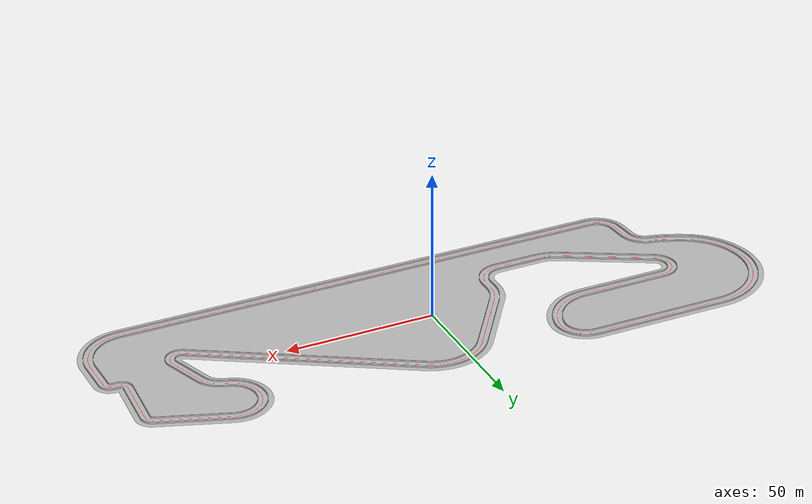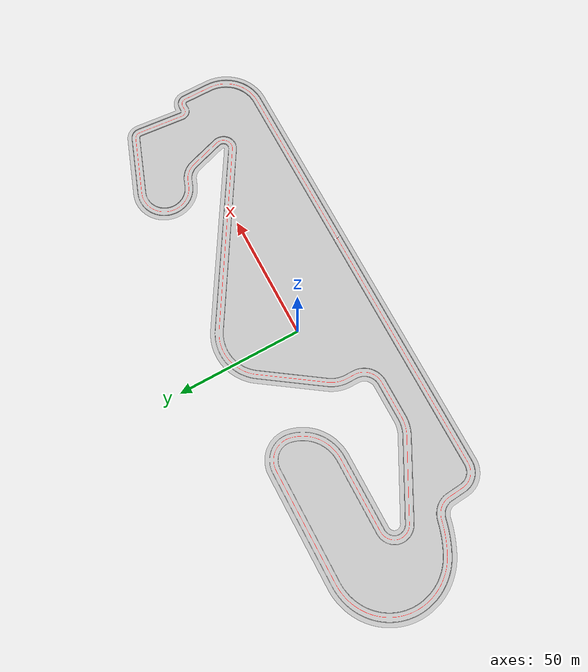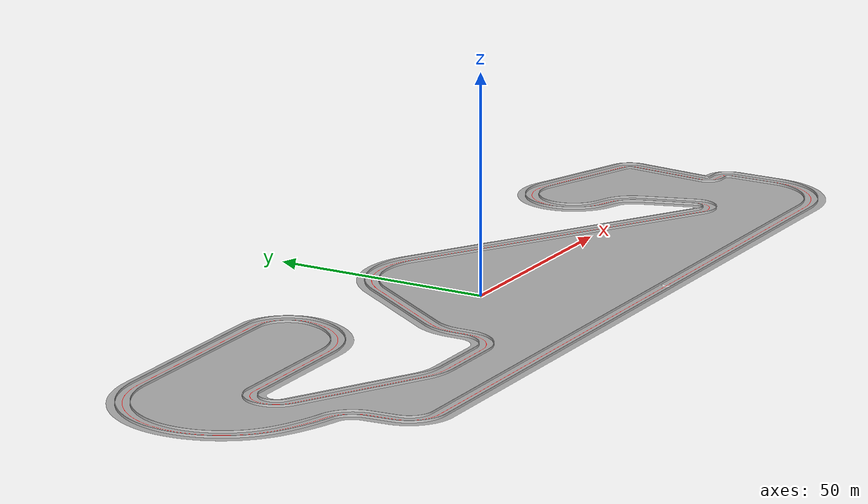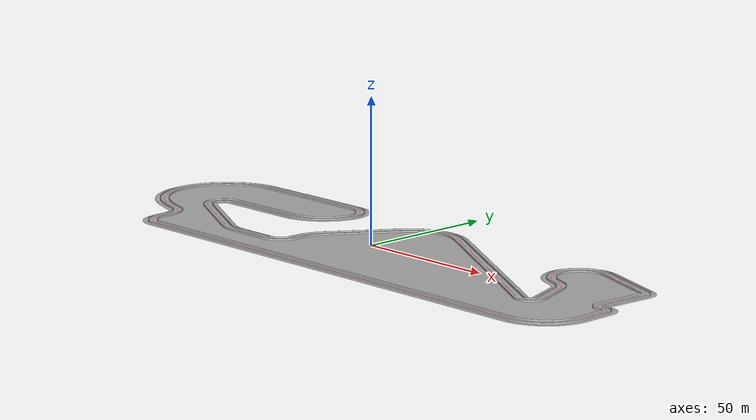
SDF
<?xml version="1.0" ?>
<sdf version="1.10">
  <world name="default">

    <plugin name="gz::sim::systems::Physics" filename="gz-sim-physics-system"/>
    <plugin name="gz::sim::systems::SceneBroadcaster" filename="gz-sim-scene-broadcaster-system"/>
    <plugin filename="gz-sim-user-commands-system" name="gz::sim::systems::UserCommands">
    </plugin>
    <plugin filename="gz-sim-sensors-system" name="gz::sim::systems::Sensors">
      <render_engine>ogre2</render_engine>
    </plugin>

    <gravity>0 0 -9.8</gravity>
    <atmosphere type="adiabatic"/>

    <scene>
      <ambient>0.4 0.4 0.4 1</ambient>
      <background>0.7 0.7 0.7 1</background>
      <shadows>true</shadows>
      <grid>false</grid>
    </scene>

    <!-- Circuito -->
    <include>
      <uri>model://montmelo_line</uri>
      <pose>0 0 0 0 0 0</pose>
    </include>

    <!-- Luz -->
    <light name="sun" type="directional">
      <pose>0 0 10 0 0 0</pose>
      <diffuse>0.8 0.8 0.8 1</diffuse>
      <specular>0.2 0.2 0.2 1</specular>
      <direction>-0.5 0.1 -0.9</direction>
      <cast_shadows>true</cast_shadows>
    </light>

  </world>
</sdf>

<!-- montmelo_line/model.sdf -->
<sdf version="1.4">
<model name="nulburgrin">
  <static>true</static>
  <link name="nulburgrin">
    <pose>0 0 0 0 0 0</pose>
    <collision name="collision">
      <geometry>
        <plane>
          <size> 700 500</size>
        </plane>
      </geometry>
    </collision>
    <visual name="visual">
      <geometry>
        <mesh>
          <uri>model://montmelo_line/meshes/montmelo.dae</uri>
        </mesh>
      </geometry>
    </visual>
  </link>
  <link name="pared">
    <collision name="collision">
      <geometry>
        <mesh>
          <uri>model://montmelo_line/meshes/montmelo_pared.dae</uri>
        </mesh>
      </geometry>
    </collision>
    <visual name="visual">
      <geometry>
        <mesh>
          <uri>model://montmelo_line/meshes/montmelo_pared.dae</uri>
        </mesh>
      </geometry>
    </visual>
  </link>
</model>
</sdf>
